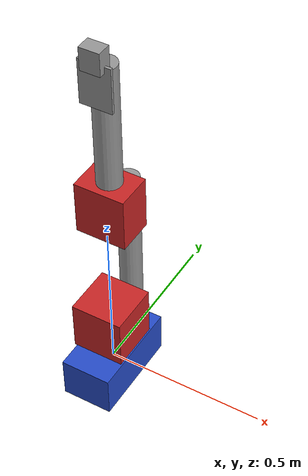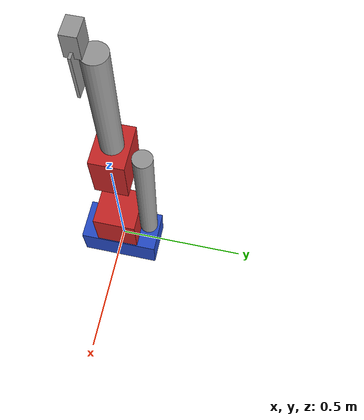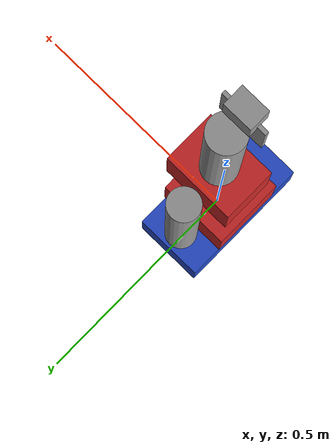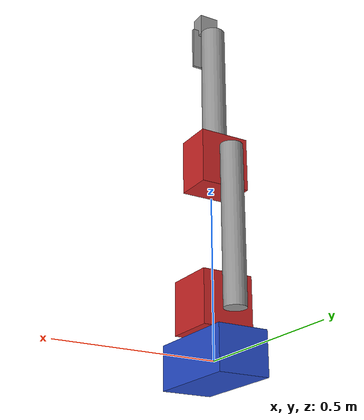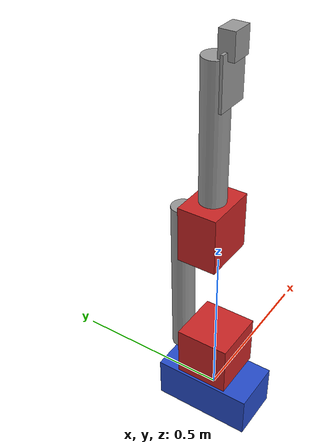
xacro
<?xml version="1.0"?>
<robot xmlns:xacro="http://www.ros.org/wiki/xacro">

    <link name="base_structure_link">
        <visual>
            <geometry>
                <box size="0.30670 0.1600 0.135"/>
            </geometry>
            <origin xyz="0 0 0" rpy="0 0 1.57" />
            <material name="blue"/>
        </visual>
        <collision>
            <geometry>
                <box size="0.30670 0.1600 0.135"/>
            </geometry>
            <material name="blue"/>
        </collision>
    </link>

    <link name="base_pivot_link">
        <visual>
            <geometry>
                <box size="0.1633 0.1633 0.1633"/>
            </geometry>
            <origin xyz="0 0 0" rpy="0 0 0"/>
            <material name="red"/>
        </visual>
        <collision>
            <geometry>
                <box size="0.1633 0.1633 0.1633"/>
            </geometry>
            <material name="red"/>
        </collision>
    </link>

    <link name="bicep_tube_link">
        <visual>
            <geometry>
                <cylinder radius="0.0348" length="0.508"/>
            </geometry>
            <origin xyz="0 0 0.220" rpy="0 0 0"/>
            <material name="grey"/>
        </visual>
        <collision>
            <geometry>
                <cylinder radius="0.0348" length="0.508"/>
            </geometry>
            <material name="grey"/>
        </collision>
    </link>

    <link name="bicep_gearbox_link">
        <visual>
            <geometry>
                <box size="0.11615 0.158 0.170"/>
            </geometry>
            <origin xyz="0 0 0" rpy="0 0 1.57"/>
            <material name="red"/>
        </visual>
        <collision>
            <geometry>
                <box size="0.11615 0.158 0.170"/>
            </geometry>
            <material name="red"/>
        </collision>
    </link>

   <link name="forearm_tube_link">
        <visual>
            <geometry>
                <cylinder radius="0.03810" length="0.490"/>
            </geometry>
            <origin xyz="0 0 0.150" rpy="0 0 0"/>
            <material name="grey"/>
        </visual>
        <collision>
            <geometry>
                <cylinder radius="0.03810" length="0.490"/>
            </geometry>
            <material name="grey"/>
        </collision>
    </link>

     <link name="bracket_connection_link">
        <visual>
            <geometry>
                <box size="0.008 0.10030 0.14015"/>
            </geometry>
            <origin xyz="0 0 0" rpy="0 0 -1.57"/>
            <material name="grey"/>
        </visual>
        <collision>
            <geometry>
                <box size="0.008 0.10030 0.14015"/>
            </geometry>
            <material name="grey"/>
        </collision>
    </link>

    <link name="gripper_base_link">
        <visual>
            <geometry>
                <box size="0.04445 0.06200 0.07"/>
            </geometry>
            <origin xyz="0 0 0" rpy="0 0 -1.57"/>
            <material name="grey"/>
        </visual>
        <collision>
            <geometry>
                <box size="0.04445 0.06200 0.07"/>
            </geometry>
            <material name="grey"/>
        </collision>
    </link>

    <joint name="joint1" type="revolute">
        <parent link="base_structure_link"/>
        <child link="base_pivot_link"/>
        <origin xyz="0 0 0.1618" rpy="0 0 0"/>
        <axis xyz="0 0 1"/>
        <limit effort="100.0" lower="-1.57" upper="1.57" velocity="1.0" />
    </joint>

    <joint name="joint2" type="revolute">
        <parent link="base_pivot_link"/>
        <child link="bicep_tube_link"/>
        <origin xyz="0 0.11645 0" rpy="0 0 0"/>
        <axis xyz="0 1 0"/>
        <limit effort="100.0" lower="-0.701" upper="1.09" velocity="1.0" />
    </joint>

    <joint name="joint3" type="revolute">
        <parent link="bicep_tube_link"/>
        <child link="bicep_gearbox_link"/>
        <origin xyz="0 -0.092875 0.440" rpy="0 0 0"/>
        <axis xyz="0 1 0"/>
        <limit effort="100.0" lower="0.0" upper="2.109" velocity="1.0" />
    </joint>

   <joint name="joint4" type="revolute">
        <parent link="bicep_gearbox_link"/>
        <child link="forearm_tube_link"/>
        <origin xyz="0 0 0.085" rpy="0 0 0"/>
        <axis xyz=" 0 0 1"/>
        <limit effort="100.0" lower="-3.14159" upper="3.14159" velocity="1.0" />
    </joint>

    <joint name="joint5" type="revolute">
        <parent link="forearm_tube_link"/>
        <child link="bracket_connection_link"/>
        <origin xyz="0 -0.0421 0.35" rpy="0 0 0"/>
        <axis xyz="0 1 0"/>
        <limit effort="100.0" lower="-1.09" upper="1.57" velocity="1.0" />
    </joint>

    <joint name="joint6" type="fixed">
        <parent link="bracket_connection_link"/>
        <child link="gripper_base_link"/>
        <origin xyz="0 0 0.085075" rpy="0 0 0"/>
    </joint>

</robot>
